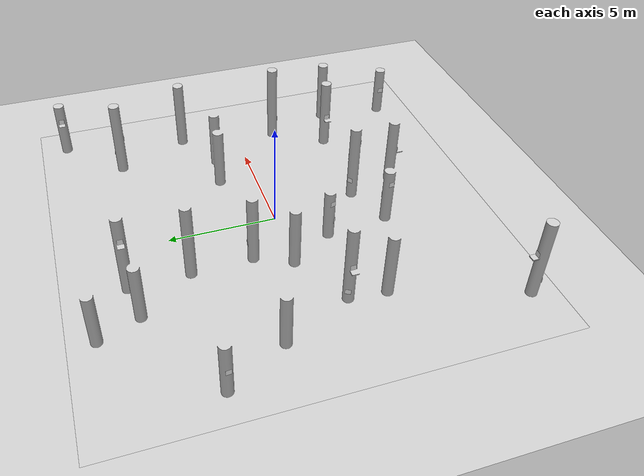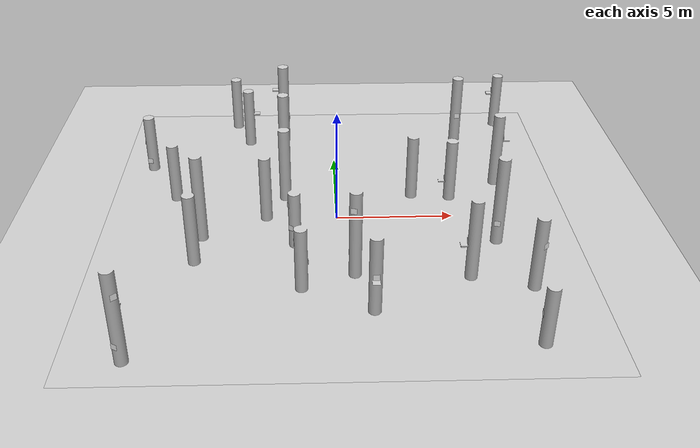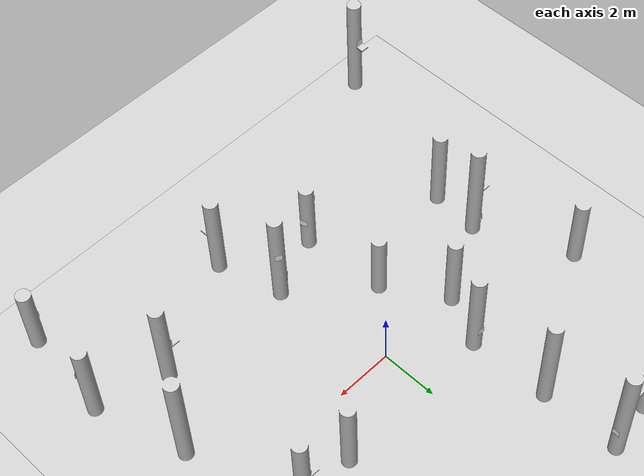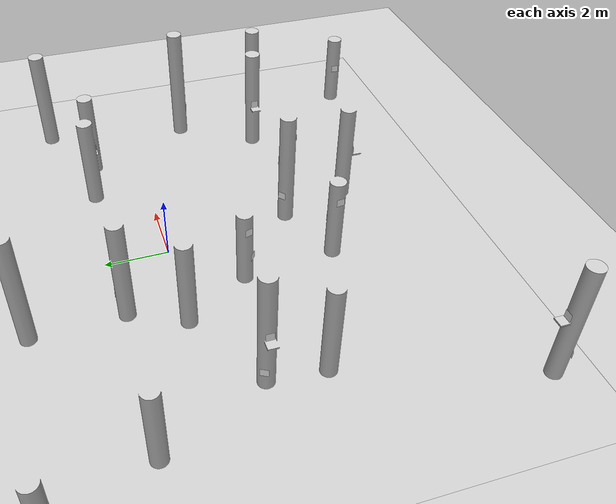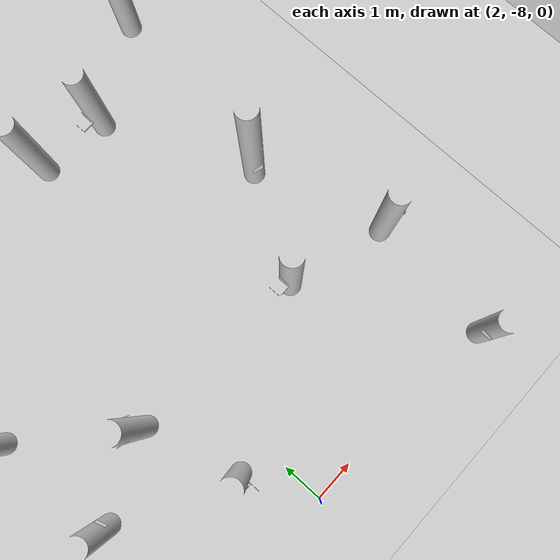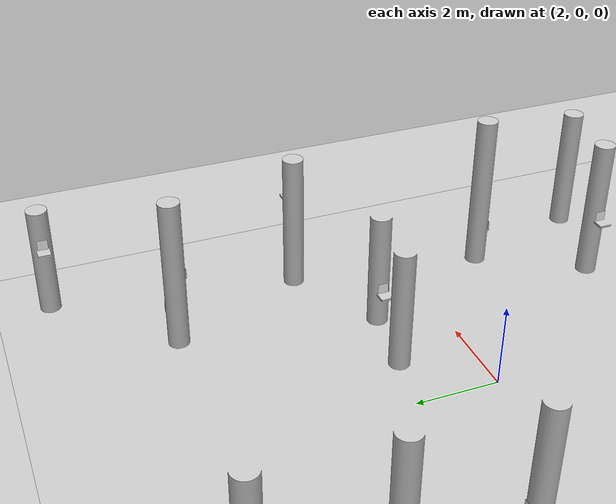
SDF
<?xml version="1.0" ?>
<sdf version="1.9">
  <world name="icuas26_1_world">
    <physics type="ode">
      <max_step_size>0.001</max_step_size>
      <real_time_factor>1.0</real_time_factor>
      <real_time_update_rate>1000</real_time_update_rate>
    </physics>
    <plugin name='gz::sim::systems::Physics' filename='libgz-sim-physics-system.so'/>
    <plugin name='gz::sim::systems::UserCommands' filename='libgz-sim-user-commands-system.so'/>
    <plugin name='gz::sim::systems::SceneBroadcaster' filename='libgz-sim-scene-broadcaster-system.so'/>
    <plugin name='gz::sim::systems::Contact' filename='libgz-sim-contact-system.so'/>
    <plugin name='gz::sim::systems::Imu' filename='libgz-sim-imu-system.so'/>
    <plugin name='gz::sim::systems::AirPressure' filename='libgz-sim-air-pressure-system.so'/>
    <plugin name='gz::sim::systems::Sensors' filename='libgz-sim-sensors-system.so'>
      <render_engine>ogre2</render_engine>
    </plugin>
    <gravity>0 0 -9.80665</gravity>
    <magnetic_field>6e-06 2.3e-05 -4.2e-05</magnetic_field>
    <atmosphere type='adiabatic'/>
    <scene>
      <grid>false</grid>
      <ambient>0.4 0.4 0.4 1</ambient>
      <background>0.7 0.7 0.7 1</background>
      <shadows>true</shadows>
    </scene>
    <model name="ground_plane">
      <pose>0.0 0.0 0.0 0.0 0.0 0.0</pose>
      <static>true</static>
      <link name="link">
        <collision name="collision">
          <geometry>
            <plane>
              <normal>0 0 1</normal>
              <size>20 20</size>
            </plane>
          </geometry>
        </collision>
        <visual name="visual">
          <geometry>
            <plane>
              <normal>0 0 1</normal>
              <size>20 20</size>
            </plane>
          </geometry>
          <material>
            <ambient>0.8 0.8 0.8 1</ambient>
            <diffuse>0.8 0.8 0.8 1</diffuse>
            <specular>0.8 0.8 0.8 1</specular>
          </material>
        </visual>
      </link>
    </model>
    <include>
      <pose>0 0 0 0 0 0</pose>
      <uri>model://icuas26_1</uri>
    </include>
    <include>
      <pose>-5.9245461954964975 -1.3902966591952697 2.0560240745544434 1.5707963267948966 0.0 -1.5707963267948966</pose>
      <uri>model://aruco_markers/aruco_marker_0011</uri>
    </include>
    <include>
      <pose>7.6041373743905405 2.8088930461047545 2.3750157356262203 1.5707963267948966 0.0 1.5707963267948966</pose>
      <uri>model://aruco_markers/aruco_marker_0014</uri>
    </include>
    <include>
      <pose>-3.864063785689837 6.942962962131911 1.7939944267272947 1.5707963267948966 0.0 1.5707963267948966</pose>
      <uri>model://aruco_markers/aruco_marker_0016</uri>
    </include>
    <include>
      <pose>4.8931823235926695 -4.35323079202693 1.702377200126648 1.5707963267948966 0.0 -1.5707963267948966</pose>
      <uri>model://aruco_markers/aruco_marker_0019</uri>
    </include>
    <include>
      <pose>8.161535785811907 8.710663002986498 1.9291462898254392 1.5707963267948966 0.0 -1.5707963267948966</pose>
      <uri>model://aruco_markers/aruco_marker_0015</uri>
    </include>
    <include>
      <pose>4.829464958678307 1.5269098666073426 1.0629193782806396 1.5707963267948966 0.0 -1.5707963267948966</pose>
      <uri>model://aruco_markers/aruco_marker_0013</uri>
    </include>
    <include>
      <pose>-2.6701104181828437 7.20780960943181 2.9438710212707524 1.5707963267948966 0.0 -1.5707963267948966</pose>
      <uri>model://aruco_markers/aruco_marker_0018</uri>
    </include>
    <include>
      <pose>-7.650363606471605 -8.548142955916887 2.3013818264014714 1.5707963267948966 0.0 3.141592653589793</pose>
      <uri>model://aruco_markers/aruco_marker_0020</uri>
    </include>
    <include>
      <pose>1.250705203735675 -6.589675380219398 1.7485904693603516 1.5707963267948966 0.0 0.0</pose>
      <uri>model://aruco_markers/aruco_marker_0017</uri>
    </include>
    <include>
      <pose>0.5277136692521002 -4.322614327139208 3.1163832206269118 1.5707963267948966 0.0 -0.2945241394496144</pose>
      <uri>model://aruco_markers/aruco_marker_0004</uri>
    </include>
    <include>
      <pose>7.670515860104562 -5.253056349238383 2.055240523127621 1.5707963267948966 0.0 0.6872225712711177</pose>
      <uri>model://aruco_markers/aruco_marker_0029</uri>
    </include>
    <include>
      <pose>-7.494162750702687 -9.005134927019473 2.980580813701609 1.5707963267948966 0.0 0.6872225712711177</pose>
      <uri>model://aruco_markers/aruco_marker_0021</uri>
    </include>
    <include>
      <pose>-7.765463559924401 -9.032253794971792 0.873435748474731 1.5707963267948966 0.0 -0.4908593256897422</pose>
      <uri>model://aruco_markers/aruco_marker_0039</uri>
    </include>
    <include>
      <pose>-1.9260135018700615 -2.1795661374272517 0.9640610893617868 1.5707963267948966 0.0 -0.6872241143786519</pose>
      <uri>model://aruco_markers/aruco_marker_0024</uri>
    </include>
    <include>
      <pose>-1.7333153274841053 -4.94030060878497 2.163032603864791 1.5707963267948966 0.0 -1.4726224733383262</pose>
      <uri>model://aruco_markers/aruco_marker_0038</uri>
    </include>
    <include>
      <pose>-2.0128758006095144 -2.0421051198780904 1.9795779946935053 1.5707963267948966 0.0 -1.276272540391203</pose>
      <uri>model://aruco_markers/aruco_marker_0009</uri>
    </include>
    <include>
      <pose>0.45460097873786054 -3.888084806080769 1.0081945861250288 1.5707963267948963 0.0 -2.454368924988569</pose>
      <uri>model://aruco_markers/aruco_marker_0006</uri>
    </include>
    <include>
      <pose>6.91507920927851 -8.271631258869627 1.3943082948065992 1.5707963267948966 0.0 -1.668970180251467</pose>
      <uri>model://aruco_markers/aruco_marker_0036</uri>
    </include>
    <include>
      <pose>-5.884822897498095 -1.2585333345668215 0.6698552802723791 1.5707963267948968 0.0 -2.061666526576081</pose>
      <uri>model://aruco_markers/aruco_marker_0035</uri>
    </include>
    <include>
      <pose>5.98080652824662 5.919138922848163 1.8863853034772002 1.5707963267948966 0.0 0.09817385345657037</pose>
      <uri>model://aruco_markers/aruco_marker_0008</uri>
    </include>
    <include>
      <pose>6.508325161350363 -2.1766323314411036 1.0218457401918337 1.5707963267948966 0.0 -0.29452661079406817</pose>
      <uri>model://aruco_markers/aruco_marker_0025</uri>
    </include>
    <include>
      <pose>-1.2360509951549623 -4.851867371492804 1.2980987877791983 1.5707963267948966 0.0 1.865322937588965</pose>
      <uri>model://aruco_markers/aruco_marker_0037</uri>
    </include>
    <include>
      <pose>-2.237267643961252 1.9366589192328774 0.9951440014739856 1.5707963267948966 0.0 3.043418323300415</pose>
      <uri>model://aruco_markers/aruco_marker_0002</uri>
    </include>
    <include>
      <pose>6.045060939527352 6.407116908233829 1.0639705115689806 1.5707963267948966 0.0 2.847066042795725</pose>
      <uri>model://aruco_markers/aruco_marker_0032</uri>
    </include>
    <include>
      <pose>-2.158872323685659 7.195853310945227 1.2589972714643771 1.5707963267948966 0.0 1.4726224733383262</pose>
      <uri>model://aruco_markers/aruco_marker_0026</uri>
    </include>
    <include>
      <pose>-8.673560946060809 4.278399672094625 0.5362549451508057 1.5707963267948966 0.0 -0.29452661079406817</pose>
      <uri>model://aruco_markers/aruco_marker_0022</uri>
    </include>
    <include>
      <pose>0.7506373003606485 -3.8684152346767533 2.2749418791127147 1.5707963267948966 0.0 2.650718163401957</pose>
      <uri>model://aruco_markers/aruco_marker_0007</uri>
    </include>
    <include>
      <pose>-8.828861161172268 4.476135054616707 1.4375598871624276 1.5707963267948966 0.0 -1.4726224733383262</pose>
      <uri>model://aruco_markers/aruco_marker_0027</uri>
    </include>
    <light type="directional" name="sun">
      <cast_shadows>true</cast_shadows>
      <pose>0 0 20 0 0 0</pose>
      <diffuse>0.8 0.8 0.8 1</diffuse>
      <specular>0.2 0.2 0.2 1</specular>
      <attenuation>
        <range>1000</range>
        <constant>0.9</constant>
        <linear>0.01</linear>
        <quadratic>0.001</quadratic>
      </attenuation>
      <direction>-0.5 0.1 -0.9</direction>
    </light>
  </world>
</sdf>

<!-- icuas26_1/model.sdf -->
<sdf version="1.9">
  <model name="icuas26_1">
    <static>true</static>
    <link name="link">
      <collision name="collision">
        <geometry>
          <mesh>
            <uri>model://icuas26_1/meshes/icuas26_1.stl</uri>
          </mesh>
        </geometry>
      </collision>
      <visual name="visual">
        <geometry>
          <mesh>
            <uri>model://icuas26_1/meshes/icuas26_1.stl</uri>
          </mesh>
        </geometry>
        <material>
            <ambient>0.8 0.8 0.8 1</ambient>
            <diffuse>0.8 0.8 0.8 1</diffuse>
            <specular>0.8 0.8 0.8 1</specular>
        </material>
      </visual>
    </link>
  </model>
</sdf>

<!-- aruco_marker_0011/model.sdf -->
<sdf version="1.9">
  <model name="aruco_marker_0011">
    <static>true</static>
    <link name="link">
      <visual name="aruco_marker_0011_vis">
        <pose>0 0 0 0 0 0</pose>
        <geometry>
          <plane>
            <normal>0 0 1</normal>
            <size>0.25 0.25</size>
          </plane>
        </geometry>
        <material>
          <pbr>
            <metal>
              <albedo_map>marker_0011.png</albedo_map>
              <metalness>0.0</metalness>
            </metal>
          </pbr>
          <ambient>1 1 1 1</ambient>
          <diffuse>1 1 1 1</diffuse>
          <specular>0 0 0 1</specular>
        </material>
      </visual>
    </link>
  </model>
</sdf>

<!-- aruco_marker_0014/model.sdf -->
<sdf version="1.9">
  <model name="aruco_marker_0014">
    <static>true</static>
    <link name="link">
      <visual name="aruco_marker_0014_vis">
        <pose>0 0 0 0 0 0</pose>
        <geometry>
          <plane>
            <normal>0 0 1</normal>
            <size>0.25 0.25</size>
          </plane>
        </geometry>
        <material>
          <pbr>
            <metal>
              <albedo_map>marker_0014.png</albedo_map>
              <metalness>0.0</metalness>
            </metal>
          </pbr>
          <ambient>1 1 1 1</ambient>
          <diffuse>1 1 1 1</diffuse>
          <specular>0 0 0 1</specular>
        </material>
      </visual>
    </link>
  </model>
</sdf>

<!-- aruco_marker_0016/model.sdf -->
<sdf version="1.9">
  <model name="aruco_marker_0016">
    <static>true</static>
    <link name="link">
      <visual name="aruco_marker_0016_vis">
        <pose>0 0 0 0 0 0</pose>
        <geometry>
          <plane>
            <normal>0 0 1</normal>
            <size>0.25 0.25</size>
          </plane>
        </geometry>
        <material>
          <pbr>
            <metal>
              <albedo_map>marker_0016.png</albedo_map>
              <metalness>0.0</metalness>
            </metal>
          </pbr>
          <ambient>1 1 1 1</ambient>
          <diffuse>1 1 1 1</diffuse>
          <specular>0 0 0 1</specular>
        </material>
      </visual>
    </link>
  </model>
</sdf>

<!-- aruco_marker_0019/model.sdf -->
<sdf version="1.9">
  <model name="aruco_marker_0019">
    <static>true</static>
    <link name="link">
      <visual name="aruco_marker_0019_vis">
        <pose>0 0 0 0 0 0</pose>
        <geometry>
          <plane>
            <normal>0 0 1</normal>
            <size>0.25 0.25</size>
          </plane>
        </geometry>
        <material>
          <pbr>
            <metal>
              <albedo_map>marker_0019.png</albedo_map>
              <metalness>0.0</metalness>
            </metal>
          </pbr>
          <ambient>1 1 1 1</ambient>
          <diffuse>1 1 1 1</diffuse>
          <specular>0 0 0 1</specular>
        </material>
      </visual>
    </link>
  </model>
</sdf>

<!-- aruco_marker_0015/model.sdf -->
<sdf version="1.9">
  <model name="aruco_marker_0015">
    <static>true</static>
    <link name="link">
      <visual name="aruco_marker_0015_vis">
        <pose>0 0 0 0 0 0</pose>
        <geometry>
          <plane>
            <normal>0 0 1</normal>
            <size>0.25 0.25</size>
          </plane>
        </geometry>
        <material>
          <pbr>
            <metal>
              <albedo_map>marker_0015.png</albedo_map>
              <metalness>0.0</metalness>
            </metal>
          </pbr>
          <ambient>1 1 1 1</ambient>
          <diffuse>1 1 1 1</diffuse>
          <specular>0 0 0 1</specular>
        </material>
      </visual>
    </link>
  </model>
</sdf>

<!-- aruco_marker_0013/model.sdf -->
<sdf version="1.9">
  <model name="aruco_marker_0013">
    <static>true</static>
    <link name="link">
      <visual name="aruco_marker_0013_vis">
        <pose>0 0 0 0 0 0</pose>
        <geometry>
          <plane>
            <normal>0 0 1</normal>
            <size>0.25 0.25</size>
          </plane>
        </geometry>
        <material>
          <pbr>
            <metal>
              <albedo_map>marker_0013.png</albedo_map>
              <metalness>0.0</metalness>
            </metal>
          </pbr>
          <ambient>1 1 1 1</ambient>
          <diffuse>1 1 1 1</diffuse>
          <specular>0 0 0 1</specular>
        </material>
      </visual>
    </link>
  </model>
</sdf>

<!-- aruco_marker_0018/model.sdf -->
<sdf version="1.9">
  <model name="aruco_marker_0018">
    <static>true</static>
    <link name="link">
      <visual name="aruco_marker_0018_vis">
        <pose>0 0 0 0 0 0</pose>
        <geometry>
          <plane>
            <normal>0 0 1</normal>
            <size>0.25 0.25</size>
          </plane>
        </geometry>
        <material>
          <pbr>
            <metal>
              <albedo_map>marker_0018.png</albedo_map>
              <metalness>0.0</metalness>
            </metal>
          </pbr>
          <ambient>1 1 1 1</ambient>
          <diffuse>1 1 1 1</diffuse>
          <specular>0 0 0 1</specular>
        </material>
      </visual>
    </link>
  </model>
</sdf>

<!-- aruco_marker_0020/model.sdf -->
<sdf version="1.9">
  <model name="aruco_marker_0020">
    <static>true</static>
    <link name="link">
      <visual name="aruco_marker_0020_vis">
        <pose>0 0 0 0 0 0</pose>
        <geometry>
          <plane>
            <normal>0 0 1</normal>
            <size>0.25 0.25</size>
          </plane>
        </geometry>
        <material>
          <pbr>
            <metal>
              <albedo_map>marker_0020.png</albedo_map>
              <metalness>0.0</metalness>
            </metal>
          </pbr>
          <ambient>1 1 1 1</ambient>
          <diffuse>1 1 1 1</diffuse>
          <specular>0 0 0 1</specular>
        </material>
      </visual>
    </link>
  </model>
</sdf>

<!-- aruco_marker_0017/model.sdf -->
<sdf version="1.9">
  <model name="aruco_marker_0017">
    <static>true</static>
    <link name="link">
      <visual name="aruco_marker_0017_vis">
        <pose>0 0 0 0 0 0</pose>
        <geometry>
          <plane>
            <normal>0 0 1</normal>
            <size>0.25 0.25</size>
          </plane>
        </geometry>
        <material>
          <pbr>
            <metal>
              <albedo_map>marker_0017.png</albedo_map>
              <metalness>0.0</metalness>
            </metal>
          </pbr>
          <ambient>1 1 1 1</ambient>
          <diffuse>1 1 1 1</diffuse>
          <specular>0 0 0 1</specular>
        </material>
      </visual>
    </link>
  </model>
</sdf>

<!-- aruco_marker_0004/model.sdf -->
<sdf version="1.9">
  <model name="aruco_marker_0004">
    <static>true</static>
    <link name="link">
      <visual name="aruco_marker_0004_vis">
        <pose>0 0 0 0 0 0</pose>
        <geometry>
          <plane>
            <normal>0 0 1</normal>
            <size>0.25 0.25</size>
          </plane>
        </geometry>
        <material>
          <pbr>
            <metal>
              <albedo_map>marker_0004.png</albedo_map>
              <metalness>0.0</metalness>
            </metal>
          </pbr>
          <ambient>1 1 1 1</ambient>
          <diffuse>1 1 1 1</diffuse>
          <specular>0 0 0 1</specular>
        </material>
      </visual>
    </link>
  </model>
</sdf>

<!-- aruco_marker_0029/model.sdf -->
<sdf version="1.9">
  <model name="aruco_marker_0029">
    <static>true</static>
    <link name="link">
      <visual name="aruco_marker_0029_vis">
        <pose>0 0 0 0 0 0</pose>
        <geometry>
          <plane>
            <normal>0 0 1</normal>
            <size>0.25 0.25</size>
          </plane>
        </geometry>
        <material>
          <pbr>
            <metal>
              <albedo_map>marker_0029.png</albedo_map>
              <metalness>0.0</metalness>
            </metal>
          </pbr>
          <ambient>1 1 1 1</ambient>
          <diffuse>1 1 1 1</diffuse>
          <specular>0 0 0 1</specular>
        </material>
      </visual>
    </link>
  </model>
</sdf>

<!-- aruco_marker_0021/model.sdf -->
<sdf version="1.9">
  <model name="aruco_marker_0021">
    <static>true</static>
    <link name="link">
      <visual name="aruco_marker_0021_vis">
        <pose>0 0 0 0 0 0</pose>
        <geometry>
          <plane>
            <normal>0 0 1</normal>
            <size>0.25 0.25</size>
          </plane>
        </geometry>
        <material>
          <pbr>
            <metal>
              <albedo_map>marker_0021.png</albedo_map>
              <metalness>0.0</metalness>
            </metal>
          </pbr>
          <ambient>1 1 1 1</ambient>
          <diffuse>1 1 1 1</diffuse>
          <specular>0 0 0 1</specular>
        </material>
      </visual>
    </link>
  </model>
</sdf>

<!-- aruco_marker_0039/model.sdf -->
<sdf version="1.9">
  <model name="aruco_marker_0039">
    <static>true</static>
    <link name="link">
      <visual name="aruco_marker_0039_vis">
        <pose>0 0 0 0 0 0</pose>
        <geometry>
          <plane>
            <normal>0 0 1</normal>
            <size>0.25 0.25</size>
          </plane>
        </geometry>
        <material>
          <pbr>
            <metal>
              <albedo_map>marker_0039.png</albedo_map>
              <metalness>0.0</metalness>
            </metal>
          </pbr>
          <ambient>1 1 1 1</ambient>
          <diffuse>1 1 1 1</diffuse>
          <specular>0 0 0 1</specular>
        </material>
      </visual>
    </link>
  </model>
</sdf>

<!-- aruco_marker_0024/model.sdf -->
<sdf version="1.9">
  <model name="aruco_marker_0024">
    <static>true</static>
    <link name="link">
      <visual name="aruco_marker_0024_vis">
        <pose>0 0 0 0 0 0</pose>
        <geometry>
          <plane>
            <normal>0 0 1</normal>
            <size>0.25 0.25</size>
          </plane>
        </geometry>
        <material>
          <pbr>
            <metal>
              <albedo_map>marker_0024.png</albedo_map>
              <metalness>0.0</metalness>
            </metal>
          </pbr>
          <ambient>1 1 1 1</ambient>
          <diffuse>1 1 1 1</diffuse>
          <specular>0 0 0 1</specular>
        </material>
      </visual>
    </link>
  </model>
</sdf>

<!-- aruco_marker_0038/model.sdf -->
<sdf version="1.9">
  <model name="aruco_marker_0038">
    <static>true</static>
    <link name="link">
      <visual name="aruco_marker_0038_vis">
        <pose>0 0 0 0 0 0</pose>
        <geometry>
          <plane>
            <normal>0 0 1</normal>
            <size>0.25 0.25</size>
          </plane>
        </geometry>
        <material>
          <pbr>
            <metal>
              <albedo_map>marker_0038.png</albedo_map>
              <metalness>0.0</metalness>
            </metal>
          </pbr>
          <ambient>1 1 1 1</ambient>
          <diffuse>1 1 1 1</diffuse>
          <specular>0 0 0 1</specular>
        </material>
      </visual>
    </link>
  </model>
</sdf>

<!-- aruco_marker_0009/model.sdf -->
<sdf version="1.9">
  <model name="aruco_marker_0009">
    <static>true</static>
    <link name="link">
      <visual name="aruco_marker_0009_vis">
        <pose>0 0 0 0 0 0</pose>
        <geometry>
          <plane>
            <normal>0 0 1</normal>
            <size>0.25 0.25</size>
          </plane>
        </geometry>
        <material>
          <pbr>
            <metal>
              <albedo_map>marker_0009.png</albedo_map>
              <metalness>0.0</metalness>
            </metal>
          </pbr>
          <ambient>1 1 1 1</ambient>
          <diffuse>1 1 1 1</diffuse>
          <specular>0 0 0 1</specular>
        </material>
      </visual>
    </link>
  </model>
</sdf>

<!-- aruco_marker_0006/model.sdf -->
<sdf version="1.9">
  <model name="aruco_marker_0006">
    <static>true</static>
    <link name="link">
      <visual name="aruco_marker_0006_vis">
        <pose>0 0 0 0 0 0</pose>
        <geometry>
          <plane>
            <normal>0 0 1</normal>
            <size>0.25 0.25</size>
          </plane>
        </geometry>
        <material>
          <pbr>
            <metal>
              <albedo_map>marker_0006.png</albedo_map>
              <metalness>0.0</metalness>
            </metal>
          </pbr>
          <ambient>1 1 1 1</ambient>
          <diffuse>1 1 1 1</diffuse>
          <specular>0 0 0 1</specular>
        </material>
      </visual>
    </link>
  </model>
</sdf>

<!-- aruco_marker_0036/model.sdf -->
<sdf version="1.9">
  <model name="aruco_marker_0036">
    <static>true</static>
    <link name="link">
      <visual name="aruco_marker_0036_vis">
        <pose>0 0 0 0 0 0</pose>
        <geometry>
          <plane>
            <normal>0 0 1</normal>
            <size>0.25 0.25</size>
          </plane>
        </geometry>
        <material>
          <pbr>
            <metal>
              <albedo_map>marker_0036.png</albedo_map>
              <metalness>0.0</metalness>
            </metal>
          </pbr>
          <ambient>1 1 1 1</ambient>
          <diffuse>1 1 1 1</diffuse>
          <specular>0 0 0 1</specular>
        </material>
      </visual>
    </link>
  </model>
</sdf>

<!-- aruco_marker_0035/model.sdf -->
<sdf version="1.9">
  <model name="aruco_marker_0035">
    <static>true</static>
    <link name="link">
      <visual name="aruco_marker_0035_vis">
        <pose>0 0 0 0 0 0</pose>
        <geometry>
          <plane>
            <normal>0 0 1</normal>
            <size>0.25 0.25</size>
          </plane>
        </geometry>
        <material>
          <pbr>
            <metal>
              <albedo_map>marker_0035.png</albedo_map>
              <metalness>0.0</metalness>
            </metal>
          </pbr>
          <ambient>1 1 1 1</ambient>
          <diffuse>1 1 1 1</diffuse>
          <specular>0 0 0 1</specular>
        </material>
      </visual>
    </link>
  </model>
</sdf>

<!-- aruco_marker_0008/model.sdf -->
<sdf version="1.9">
  <model name="aruco_marker_0008">
    <static>true</static>
    <link name="link">
      <visual name="aruco_marker_0008_vis">
        <pose>0 0 0 0 0 0</pose>
        <geometry>
          <plane>
            <normal>0 0 1</normal>
            <size>0.25 0.25</size>
          </plane>
        </geometry>
        <material>
          <pbr>
            <metal>
              <albedo_map>marker_0008.png</albedo_map>
              <metalness>0.0</metalness>
            </metal>
          </pbr>
          <ambient>1 1 1 1</ambient>
          <diffuse>1 1 1 1</diffuse>
          <specular>0 0 0 1</specular>
        </material>
      </visual>
    </link>
  </model>
</sdf>

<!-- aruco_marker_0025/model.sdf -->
<sdf version="1.9">
  <model name="aruco_marker_0025">
    <static>true</static>
    <link name="link">
      <visual name="aruco_marker_0025_vis">
        <pose>0 0 0 0 0 0</pose>
        <geometry>
          <plane>
            <normal>0 0 1</normal>
            <size>0.25 0.25</size>
          </plane>
        </geometry>
        <material>
          <pbr>
            <metal>
              <albedo_map>marker_0025.png</albedo_map>
              <metalness>0.0</metalness>
            </metal>
          </pbr>
          <ambient>1 1 1 1</ambient>
          <diffuse>1 1 1 1</diffuse>
          <specular>0 0 0 1</specular>
        </material>
      </visual>
    </link>
  </model>
</sdf>

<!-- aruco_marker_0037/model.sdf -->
<sdf version="1.9">
  <model name="aruco_marker_0037">
    <static>true</static>
    <link name="link">
      <visual name="aruco_marker_0037_vis">
        <pose>0 0 0 0 0 0</pose>
        <geometry>
          <plane>
            <normal>0 0 1</normal>
            <size>0.25 0.25</size>
          </plane>
        </geometry>
        <material>
          <pbr>
            <metal>
              <albedo_map>marker_0037.png</albedo_map>
              <metalness>0.0</metalness>
            </metal>
          </pbr>
          <ambient>1 1 1 1</ambient>
          <diffuse>1 1 1 1</diffuse>
          <specular>0 0 0 1</specular>
        </material>
      </visual>
    </link>
  </model>
</sdf>

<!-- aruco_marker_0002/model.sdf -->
<sdf version="1.9">
  <model name="aruco_marker_0002">
    <static>true</static>
    <link name="link">
      <visual name="aruco_marker_0002_vis">
        <pose>0 0 0 0 0 0</pose>
        <geometry>
          <plane>
            <normal>0 0 1</normal>
            <size>0.25 0.25</size>
          </plane>
        </geometry>
        <material>
          <pbr>
            <metal>
              <albedo_map>marker_0002.png</albedo_map>
              <metalness>0.0</metalness>
            </metal>
          </pbr>
          <ambient>1 1 1 1</ambient>
          <diffuse>1 1 1 1</diffuse>
          <specular>0 0 0 1</specular>
        </material>
      </visual>
    </link>
  </model>
</sdf>

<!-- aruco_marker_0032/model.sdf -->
<sdf version="1.9">
  <model name="aruco_marker_0032">
    <static>true</static>
    <link name="link">
      <visual name="aruco_marker_0032_vis">
        <pose>0 0 0 0 0 0</pose>
        <geometry>
          <plane>
            <normal>0 0 1</normal>
            <size>0.25 0.25</size>
          </plane>
        </geometry>
        <material>
          <pbr>
            <metal>
              <albedo_map>marker_0032.png</albedo_map>
              <metalness>0.0</metalness>
            </metal>
          </pbr>
          <ambient>1 1 1 1</ambient>
          <diffuse>1 1 1 1</diffuse>
          <specular>0 0 0 1</specular>
        </material>
      </visual>
    </link>
  </model>
</sdf>

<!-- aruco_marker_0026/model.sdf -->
<sdf version="1.9">
  <model name="aruco_marker_0026">
    <static>true</static>
    <link name="link">
      <visual name="aruco_marker_0026_vis">
        <pose>0 0 0 0 0 0</pose>
        <geometry>
          <plane>
            <normal>0 0 1</normal>
            <size>0.25 0.25</size>
          </plane>
        </geometry>
        <material>
          <pbr>
            <metal>
              <albedo_map>marker_0026.png</albedo_map>
              <metalness>0.0</metalness>
            </metal>
          </pbr>
          <ambient>1 1 1 1</ambient>
          <diffuse>1 1 1 1</diffuse>
          <specular>0 0 0 1</specular>
        </material>
      </visual>
    </link>
  </model>
</sdf>

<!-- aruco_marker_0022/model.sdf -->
<sdf version="1.9">
  <model name="aruco_marker_0022">
    <static>true</static>
    <link name="link">
      <visual name="aruco_marker_0022_vis">
        <pose>0 0 0 0 0 0</pose>
        <geometry>
          <plane>
            <normal>0 0 1</normal>
            <size>0.25 0.25</size>
          </plane>
        </geometry>
        <material>
          <pbr>
            <metal>
              <albedo_map>marker_0022.png</albedo_map>
              <metalness>0.0</metalness>
            </metal>
          </pbr>
          <ambient>1 1 1 1</ambient>
          <diffuse>1 1 1 1</diffuse>
          <specular>0 0 0 1</specular>
        </material>
      </visual>
    </link>
  </model>
</sdf>

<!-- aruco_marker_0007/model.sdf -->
<sdf version="1.9">
  <model name="aruco_marker_0007">
    <static>true</static>
    <link name="link">
      <visual name="aruco_marker_0007_vis">
        <pose>0 0 0 0 0 0</pose>
        <geometry>
          <plane>
            <normal>0 0 1</normal>
            <size>0.25 0.25</size>
          </plane>
        </geometry>
        <material>
          <pbr>
            <metal>
              <albedo_map>marker_0007.png</albedo_map>
              <metalness>0.0</metalness>
            </metal>
          </pbr>
          <ambient>1 1 1 1</ambient>
          <diffuse>1 1 1 1</diffuse>
          <specular>0 0 0 1</specular>
        </material>
      </visual>
    </link>
  </model>
</sdf>

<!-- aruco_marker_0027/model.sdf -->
<sdf version="1.9">
  <model name="aruco_marker_0027">
    <static>true</static>
    <link name="link">
      <visual name="aruco_marker_0027_vis">
        <pose>0 0 0 0 0 0</pose>
        <geometry>
          <plane>
            <normal>0 0 1</normal>
            <size>0.25 0.25</size>
          </plane>
        </geometry>
        <material>
          <pbr>
            <metal>
              <albedo_map>marker_0027.png</albedo_map>
              <metalness>0.0</metalness>
            </metal>
          </pbr>
          <ambient>1 1 1 1</ambient>
          <diffuse>1 1 1 1</diffuse>
          <specular>0 0 0 1</specular>
        </material>
      </visual>
    </link>
  </model>
</sdf>
